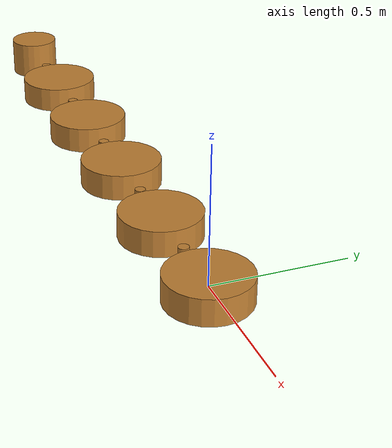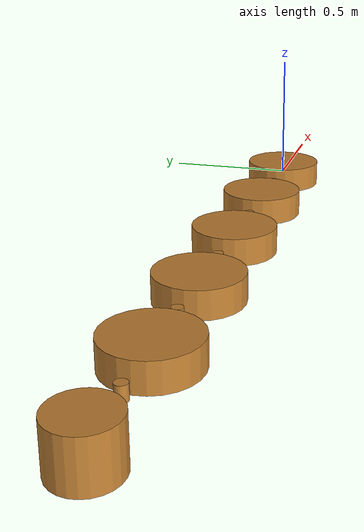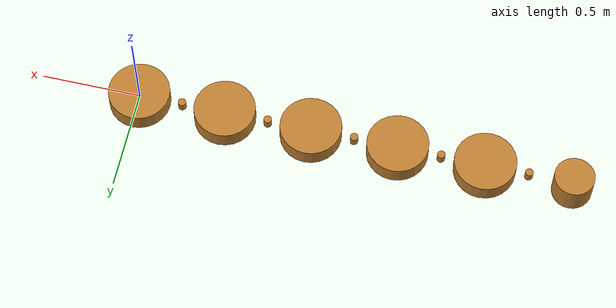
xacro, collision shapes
<?xml version="1.0"?>
<robot
    xmlns:xacro="http://www.ros.org/wiki/xacro" name="hydra3" >

  <xacro:include filename="$(find aerial_robot_model)/urdf/hydra3/hydra3_common.xacro" />
  <xacro:include filename="$(find aerial_robot_model)/urdf/hydra3/hydra3_link.urdf.xacro" />

  <xacro:hydra3_link self="1" child="2" head="true" tail="false" imu="false"/>
  <xacro:hydra3_link self="2" child="3" head="false" tail="false" imu="false"/>
  <xacro:hydra3_link self="3" child="4" head="false" tail="false" imu="false"/>
  <xacro:hydra3_link self="4" child="5" head="false" tail="false" imu="false"/>
  <xacro:hydra3_link self="5" child="6" head="false" tail="false" imu="false"/>
  <xacro:hydra3_link self="6" child="7" head="false" tail="true" imu="false"/>

</robot>

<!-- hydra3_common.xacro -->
<robot
    xmlns:xacro="http://www.ros.org/wiki/xacro" name="hydra3_common" >

  <xacro:property name="pi" value="3.1415926535897931" />
  <xacro:property name="link_length" value=".44" />
  <xacro:property name="protector_radius" value=".155" />

  <xacro:macro name="link_color">
    <material name="color">
      <color rgba="0.75 .5 .2 1"/>
    </material>
  </xacro:macro>

</robot>

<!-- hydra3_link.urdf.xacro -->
<robot
    xmlns:xacro="http://www.ros.org/wiki/xacro" name="hydra_link" >

  <!-- problem: the direction of the link is opposite, because the joint!! -->
  <xacro:macro name="hydra3_link" params="self child head tail imu">

    <xacro:if value="${head}">
      <link name="link${self}">
        <collision>
          <origin xyz="0 0 0" rpy="0 0 0"/>
          <geometry>
          <cylinder length="0.1" radius="${protector_radius}"/>
          </geometry>
        </collision>

        <visual>
          <origin rpy="0 0 ${pi}" xyz="0 0 0"/>
          <geometry>
            <mesh filename="package://aerial_robot_model/urdf/hydra3/mesh/hydra_link1.stl" scale=".001 .001 .001"/>
          </geometry>
          <xacro:link_color />
        </visual>

        <inertial>
          <origin xyz="0 0 0" rpy="0 0 0"/>
          <mass value="0.5"/>
          <inertia
	      ixx="0.1" ixy="0.0" ixz="0.0"
	      iyy="0.01" iyz="0.0"
	      izz="0.11"/>
        </inertial>
      </link>

      <joint name="joint${self}" type="revolute">
        <limit effort="100.0" lower="-1.57" upper="1.57" velocity="0.5"/>
        <parent link="link${self}"/>
        <child link="joint${self}"/>
        <origin rpy="0 0 0" xyz="-${link_length*.5} 0 0"/>
        <axis xyz="0 0 1"/>
        <dynamics damping="0.8"/>
      </joint>

      <link name="joint${self}">
        <collision>
          <origin rpy="0 0 0" xyz="0 0 0"/>
          <geometry>
            <cylinder length="0.05" radius="0.02"/>
          </geometry>
        </collision>
        <visual>
          <origin rpy="0 0 0" xyz="0 0 0"/>
          <geometry>
            <cylinder length="0.001" radius="0.001"/>
          </geometry>
          <material name="color">
            <color rgba="0.75 .5 .2 1"/>
          </material>
        </visual>
        <inertial>
          <origin rpy="0 0 0" xyz="0 0 0"/>
          <mass value="0.1"/>
          <inertia ixx="0.00005" ixy="0.0" ixz="0.0" iyy="0.00005" iyz="0.0" izz="0.0001"/>
        </inertial>
      </link>

      <joint name="joint${self}_link${child}" type="fixed">
        <parent link="joint${self}"/>
        <child link="link${child}"/>
        <origin rpy="0 0 0" xyz="-${link_length*.5} 0 0"/>
      </joint>

    </xacro:if>
    <xacro:unless value="${head}">
      <xacro:if value="${tail}">
        <link name="link${self}">
          <collision>
            <origin xyz="0 0 0" rpy="0 0 0"/>
            <geometry>
              <cylinder length="${protector_radius}" radius="0.1"/>
            </geometry>
          </collision>

          <visual>
            <origin rpy="0 0 ${pi}" xyz="0 0 0"/>
            <geometry>
              <mesh filename="package://aerial_robot_model/urdf/hydra3/mesh/hydra_link4.stl" scale=".001 .001 .001"/>
            </geometry>
            <xacro:link_color />
          </visual>

          <inertial>
            <origin xyz="0 0 0" rpy="0 0 0"/>
            <mass value="0.5"/>
            <inertia
	        ixx="0.1" ixy="0.0" ixz="0.0"
	        iyy="0.01" iyz="0.0"
	        izz="0.11"/>
          </inertial>
        </link>

      </xacro:if>
      <xacro:unless value="${tail}">
        <xacro:if value="${imu}">

          <link name="link${self}">
            <collision>
              <origin xyz="0 0 0" rpy="0 0 0"/>
              <geometry>
                <cylinder length="${protector_radius}" radius="0.1"/>
              </geometry>
            </collision>

            <visual>
              <origin rpy="0 0 ${pi}" xyz="0 0 0"/>
              <geometry>
                <mesh filename="package://aerial_robot_model/urdf/hydra3/mesh/hydra_link2.stl" scale=".001 .001 .001"/>
              </geometry>
              <xacro:link_color />
            </visual>

            <inertial>
              <origin xyz="0 0 0" rpy="0 0 0"/>
              <mass value="0.5"/>
              <inertia
	          ixx="0.1" ixy="0.0" ixz="0.0"
	          iyy="0.01" iyz="0.0"
	          izz="0.11"/>
            </inertial>
          </link>

        </xacro:if>
        <xacro:unless value="${imu}">

          <link name="link${self}">
            <collision>
              <origin xyz="0 0 0" rpy="0 0 0"/>
              <geometry>
                <cylinder length="0.1" radius="${protector_radius}"/>
              </geometry>
            </collision>

            <visual>
              <origin rpy="0 0 ${pi}" xyz="0 0 0"/>
              <geometry>
                <mesh filename="package://aerial_robot_model/urdf/hydra3/mesh/hydra_link3.stl" scale=".001 .001 .001"/>
              </geometry>
              <xacro:link_color />
            </visual>

            <inertial>
              <origin xyz="0 0 0" rpy="0 0 0"/>
              <mass value="0.5"/>
              <inertia
	          ixx="0.1" ixy="0.0" ixz="0.0"
	          iyy="0.01" iyz="0.0"
	          izz="0.11"/>
            </inertial>
          </link>

        </xacro:unless>
        <joint name="joint${self}" type="revolute">
          <limit effort="100.0" lower="-1.57" upper="1.57" velocity="0.5"/>
          <parent link="link${self}"/>
          <child link="joint${self}"/>
          <origin rpy="0 0 0" xyz="-${link_length*.5} 0 0"/>
          <axis xyz="0 0 1"/>
          <dynamics damping="0.7"/>
        </joint>

        <link name="joint${self}">
          <collision>
            <origin rpy="0 0 0" xyz="0 0 0"/>
            <geometry>
              <cylinder length="0.05" radius="0.02"/>
            </geometry>
          </collision>
          <visual>
            <origin rpy="0 0 0" xyz="0 0 0"/>
            <geometry>
              <cylinder length="0.001" radius="0.001"/>
            </geometry>
            <material name="color">
              <color rgba="0.75 .5 .2 1"/>
            </material>
          </visual>
          <inertial>
            <origin rpy="0 0 0" xyz="0 0 0"/>
            <mass value="0.1"/>
            <inertia ixx="0.00005" ixy="0.0" ixz="0.0" iyy="0.00005" iyz="0.0" izz="0.0001"/>
          </inertial>
        </link>

        <joint name="joint${self}_link${child}" type="fixed">
          <parent link="joint${self}"/>
          <child link="link${child}"/>
          <origin rpy="0 0 0" xyz="-${link_length*.5} 0 0"/>
        </joint>

      </xacro:unless>

    </xacro:unless>

  </xacro:macro>

</robot>
